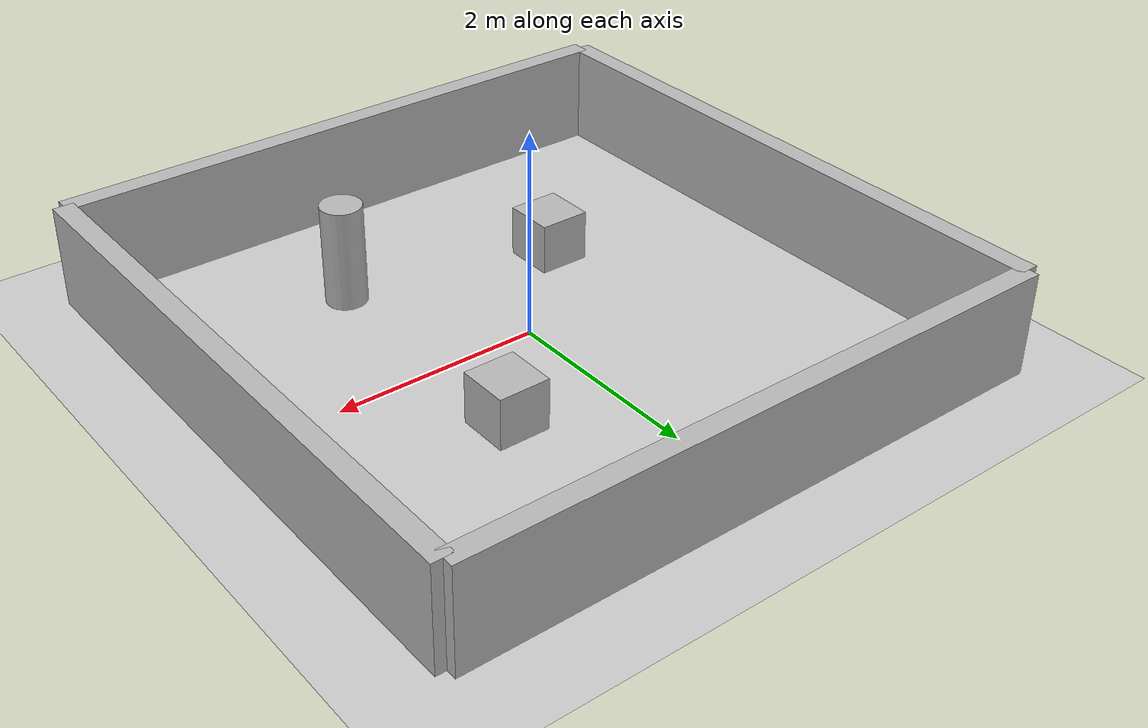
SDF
<?xml version="1.0"?>
<sdf version="1.6">
  <world name="maze_world">

    <!-- 기본 환경 -->
    <include>
      <uri>model://ground_plane</uri>
    </include>
    <include>
      <uri>model://sun</uri>
    </include>

    <!-- ── 벽 4개 (방 경계) ── -->

    <!-- 북쪽 벽 -->
    <model name="wall_north">
      <static>true</static>
      <pose>0 3 0.5 0 0 0</pose>
      <link name="link">
        <collision name="collision">
          <geometry><box><size>6 0.2 1</size></box></geometry>
        </collision>
        <visual name="visual">
          <geometry><box><size>6 0.2 1</size></box></geometry>
        </visual>
      </link>
    </model>

    <!-- 남쪽 벽 -->
    <model name="wall_south">
      <static>true</static>
      <pose>0 -3 0.5 0 0 0</pose>
      <link name="link">
        <collision name="collision">
          <geometry><box><size>6 0.2 1</size></box></geometry>
        </collision>
        <visual name="visual">
          <geometry><box><size>6 0.2 1</size></box></geometry>
        </visual>
      </link>
    </model>

    <!-- 동쪽 벽 -->
    <model name="wall_east">
      <static>true</static>
      <pose>3 0 0.5 0 0 0</pose>
      <link name="link">
        <collision name="collision">
          <geometry><box><size>0.2 6 1</size></box></geometry>
        </collision>
        <visual name="visual">
          <geometry><box><size>0.2 6 1</size></box></geometry>
        </visual>
      </link>
    </model>

    <!-- 서쪽 벽 -->
    <model name="wall_west">
      <static>true</static>
      <pose>-3 0 0.5 0 0 0</pose>
      <link name="link">
        <collision name="collision">
          <geometry><box><size>0.2 6 1</size></box></geometry>
        </collision>
        <visual name="visual">
          <geometry><box><size>0.2 6 1</size></box></geometry>
        </visual>
      </link>
    </model>

    <!-- ── 장애물 ── -->

    <!-- 상자 1 -->
    <model name="box_1">
      <static>true</static>
      <pose>1 1 0.25 0 0 0</pose>
      <link name="link">
        <collision name="collision">
          <geometry><box><size>0.5 0.5 0.5</size></box></geometry>
        </collision>
        <visual name="visual">
          <geometry><box><size>0.5 0.5 0.5</size></box></geometry>
        </visual>
      </link>
    </model>

    <!-- 상자 2 -->
    <model name="box_2">
      <static>true</static>
      <pose>-1 -1 0.25 0 0 0</pose>
      <link name="link">
        <collision name="collision">
          <geometry><box><size>0.5 0.5 0.5</size></box></geometry>
        </collision>
        <visual name="visual">
          <geometry><box><size>0.5 0.5 0.5</size></box></geometry>
        </visual>
      </link>
    </model>

    <!-- 원기둥 -->
    <model name="cylinder_1">
      <static>true</static>
      <pose>1 -1.5 0.5 0 0 0</pose>
      <link name="link">
        <collision name="collision">
          <geometry><cylinder><radius>0.2</radius><length>1</length></cylinder></geometry>
        </collision>
        <visual name="visual">
          <geometry><cylinder><radius>0.2</radius><length>1</length></cylinder></geometry>
        </visual>
      </link>
    </model>

  </world>
</sdf>
